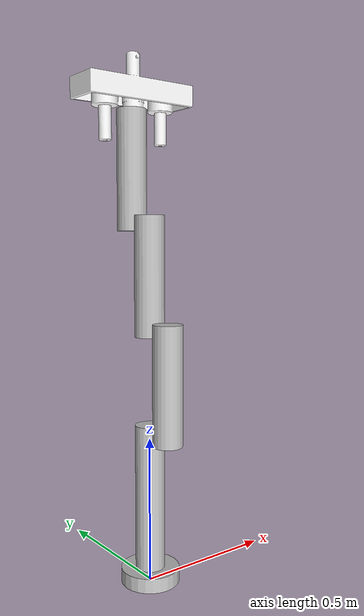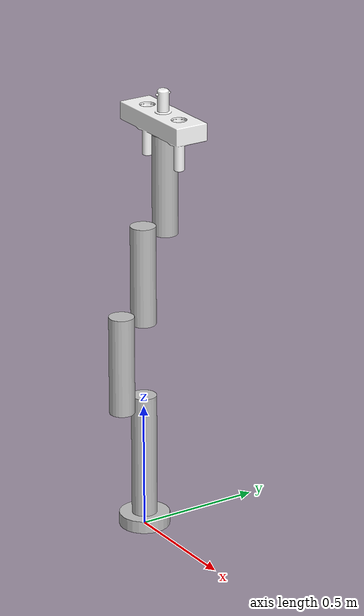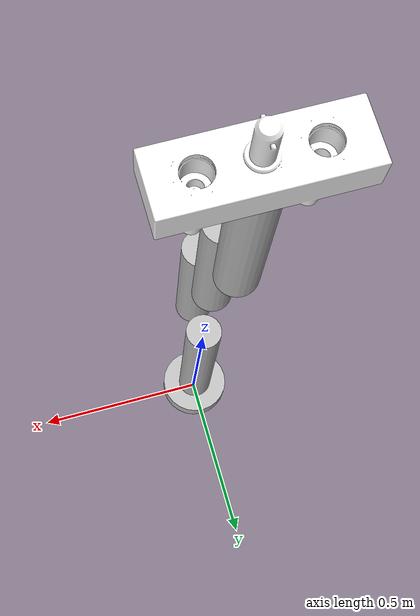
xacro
<?xml version="1.0"?>

<robot name="arm">

    <link name="world"/>

        <link name="base_link">
            <visual>
                <geometry>
                    <cylinder length="0.05" radius="0.1"/>
                </geometry>
                <material name="silver">
                    <color rgba="0.75 0.75 0.75 1"/>
                </material>
                <origin rpy="0 0 0" xyz="0 0 0.025"/>
            </visual>

        <collision>
            <geometry>
                <cylinder length="0.05" radius="0.1"/>
            </geometry>
            <origin rpy="0 0 0" xyz="0 0 0.025"/>
        </collision>

        <inertial>
            <origin rpy="0 0 0" xyz="0 0 0.025"/>
            <mass value="5.0"/>
            <inertia ixx="0.0135" ixy="0.0" ixz="0.0" iyy="0.0135" iyz="0.0" izz="0.05"/>
        </inertial>

    </link>

  <joint name="fixed" type="fixed">
    <parent link="world"/>
    <child link="base_link"/>
  </joint>

  <link name="link_1">
    <visual>
        <geometry>
            <cylinder length="0.5" radius="0.05"/>
        </geometry>
        <material name="silver">
            <color rgba="0.75 0.75 0.75 1"/>
        </material>
        <origin rpy="0 0 0" xyz="0 0 0.25"/>
    </visual>

    <collision>
        <geometry>
            <cylinder length="0.5" radius="0.05"/>
        </geometry>
        <origin rpy="0 0 0" xyz="0 0 0.25"/>
    </collision>

    <inertial>
        <origin rpy="0 0 0" xyz="0 0 0.25"/>
        <mass value="5.0"/>
        <inertia ixx="0.107" ixy="0.0" ixz="0.0" iyy="0.107" iyz="0.0" izz="0.0125"/>
    </inertial>

  </link>

  <joint name="joint1" type="continuous">
    <axis xyz="0 0 1"/>
    <parent link="base_link"/>
    <child link="link_1"/>
    <origin rpy="0 0 0" xyz="0.0 0.0 0.05"/>
  </joint>

    <link name="link_2">
        <inertial>
            <origin rpy="0 0 0" xyz="0 0 0.2"/>
            <mass value="2.0"/>
            <inertia ixx="0.027" ixy="0.0" ixz="0.0" iyy="0.027" iyz="0.0" izz="0.0025"/>
        </inertial>

        <visual>
            <geometry>
            <cylinder length="0.4" radius="0.05"/>
            </geometry>
            <material name="silver"/>
            <origin rpy="0 0 0" xyz="0 0 0.2"/>
        </visual>

        <collision>
            <geometry>
                    <cylinder length="0.4" radius="0.05"/>
            </geometry>
            <origin rpy="0 0 0" xyz="0 0 0.2"/>
        </collision>

    </link>

    <joint name="joint2" type="continuous">
    <axis xyz="0 1 0"/>
    <parent link="link_1"/>
    <child link="link_2"/>
    <origin rpy="0 0 0" xyz="0.0 -0.1 0.45"/>
    </joint>

    <link name="link_3">
        <inertial>
            <origin rpy="0 0 0" xyz="0 0 0.2"/>
            <mass value="2.0"/>
            <inertia ixx="0.027" ixy="0.0" ixz="0.0" iyy="0.027" iyz="0.0" izz="0.0025"/>
        </inertial>

        <visual>
            <geometry>
            <cylinder length="0.4" radius="0.05"/>
            </geometry>
            <material name="silver"/>
            <origin rpy="0 0 0" xyz="0 0 0.2"/>
            </visual>

        <collision>
            <geometry>
                <cylinder length="0.4" radius="0.05"/>
            </geometry>
            <origin rpy="0 0 0" xyz="0 0 0.2"/>
        </collision>
    </link>

    <joint name="joint3" type="continuous">
    <axis xyz="0 1 0"/>
    <parent link="link_2"/>
    <child link="link_3"/>
    <origin rpy="0 0 0" xyz="0.0 0.1 0.35"/>
    </joint>

    <link name="link_4">
        <inertial>
            <origin rpy="0 0 0" xyz="0 0 0.2"/>
            <mass value="2.0"/>
            <inertia ixx="0.027" ixy="0.0" ixz="0.0" iyy="0.027" iyz="0.0" izz="0.0025"/>
        </inertial>

        <visual>
            <geometry>
            <cylinder length="0.4" radius="0.05"/>
            </geometry>
            <material name="silver"/>
            <origin rpy="0 0 0" xyz="0 0 0.2"/>
            </visual>

        <collision>
            <geometry>
                <cylinder length="0.4" radius="0.05"/>
            </geometry>
            <origin rpy="0 0 0" xyz="0 0 0.2"/>
        </collision>

    </link>

    <joint name="joint4" type="continuous">
        <axis xyz="0 1 0"/>
        <parent link="link_3"/>
        <child link="link_4"/>
        <origin rpy="0 0 0" xyz="0.0 0.1 0.35"/>
    </joint>

    <link name="camera_link"></link>

    <joint name="camera_joint" type="fixed">
        <parent link="link_4"/>
        <child link="camera_link"/>
        <origin xyz="0 0 0.55" rpy="1.57 -1.57 0"/>
    </joint>

    <link name="link_5">
        <visual>
            <origin xyz="-0.2 0.06 0.58" rpy="3.14 0 0"/>
            <geometry>
                <mesh filename="package://robotic-arm-refuelling/meshes/refueller/injector.stl" scale="0.003 0.003 0.003" />
            </geometry>
            <material name="">
                <color rgba="1 1 1 1" />
            </material>
        </visual>
        <collision>
            <origin xyz="-0.2 0.06 0.58" rpy="3.14 0 0" />
            <geometry>
                <mesh filename="package://robotic-arm-refuelling/meshes/refueller/injector.stl" scale="0.003 0.003 0.003" />
            </geometry>
        </collision>
        <inertial>
        <mass value="10"/>
        <inertia ixx="0.4" ixy="0.0" ixz="0.0" iyy="0.4" iyz="0.0" izz="0.4"/>
        </inertial>
    </link>

    <joint name="joint5" type="revolute">
        <origin xyz="0 0 0" rpy="0 0 0"/>
        <axis xyz="0 0 1"/>
        <parent link="link_4"/>
        <child link="link_5"/>
        <limit effort="30" velocity="1.0" lower="-1.5708" upper="3.1416"/>
    </joint>

    <gazebo reference="base_link">
        <material>Gazebo/Black</material>
    </gazebo>
    <gazebo reference="link_1">
        <material>Gazebo/Grey</material>
    </gazebo>
    <gazebo reference="link_2">
        <material>Gazebo/Orange</material>
    </gazebo>
    <gazebo reference="link_3">
        <material>Gazebo/Black</material>
    </gazebo>
    <gazebo reference="link_4">
        <material>Gazebo/Yellow</material>
    </gazebo>
    <gazebo reference="camera_link">
        <material>Gazebo/Red</material>
    </gazebo>

    <!-- PositionJointInterface -->
    <transmission name ="trans_1">
        <type>transmission_interface/SimpleTransmission</type>
        <joint name="joint1">
            <hardwareInterface>hardware_interface/PositionJointInterface</hardwareInterface>
        </joint>
        <actuator name="motor_1">
            <hardwareInterface>hardware_interface/PositionJointInterface</hardwareInterface>
            <mechanicalReduction>1</mechanicalReduction>
        </actuator>
    </transmission>

    <transmission name ="trans_2">
        <type>transmission_interface/SimpleTransmission</type>
        <joint name="joint2">
            <hardwareInterface>hardware_interface/PositionJointInterface</hardwareInterface>
        </joint>
        <actuator name="motor_2">
            <hardwareInterface>hardware_interface/PositionJointInterface</hardwareInterface>
            <mechanicalReduction>1</mechanicalReduction>
        </actuator>
    </transmission>
    <transmission name ="trans_3">
        <type>transmission_interface/SimpleTransmission</type>
        <joint name="joint3">
            <hardwareInterface>hardware_interface/PositionJointInterface</hardwareInterface>
        </joint>
        <actuator name="motor_3">
            <hardwareInterface>hardware_interface/PositionJointInterface</hardwareInterface>
            <mechanicalReduction>1</mechanicalReduction>
        </actuator>
    </transmission>
    <transmission name ="trans_4">
        <type>transmission_interface/SimpleTransmission</type>
        <joint name="joint4">
            <hardwareInterface>hardware_interface/PositionJointInterface</hardwareInterface>
        </joint>
        <actuator name="motor_4">
            <hardwareInterface>hardware_interface/PositionJointInterface</hardwareInterface>
            <mechanicalReduction>1</mechanicalReduction>
        </actuator>
    </transmission>
    <transmission name ="trans_5">
        <type>transmission_interface/SimpleTransmission</type>
        <joint name="joint5">
            <hardwareInterface>hardware_interface/PositionJointInterface</hardwareInterface>
        </joint>
        <actuator name="motor_5">
            <hardwareInterface>hardware_interface/PositionJointInterface</hardwareInterface>
            <mechanicalReduction>1</mechanicalReduction>
        </actuator>
    </transmission>

    <gazebo>
        <plugin name="control" filename="libgazebo_ros_control.so"/>
    </gazebo>

    <gazebo reference="camera_link">
        <sensor name="camera" type="camera">
            <pose> 0 0 0 0 0 0 </pose>
            <visualize>true</visualize>
            <update_rate>10</update_rate>
            <camera>
                <horizontal_fov>1.089</horizontal_fov>
                <image>
                    <format>R8G8B8</format>
                    <width>640</width>
                    <height>480</height>
                </image>
                <clip>
                    <near>0.05</near>
                    <far>8.0</far>
                </clip>
            </camera>
            <plugin name="camera_controller" filename="libgazebo_ros_camera.so">
                <frame_name>camera_link_optical</frame_name>
            </plugin>
        </sensor>
    </gazebo>

</robot>
